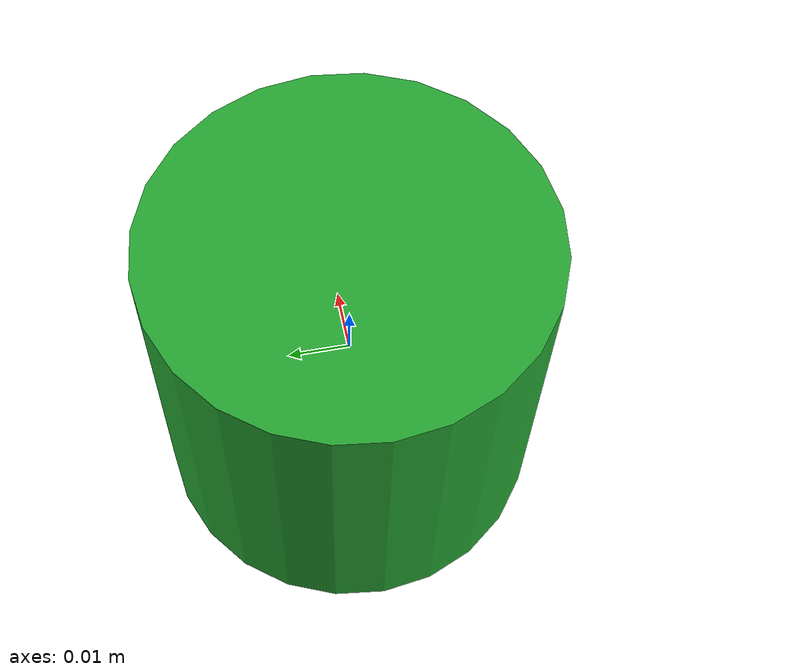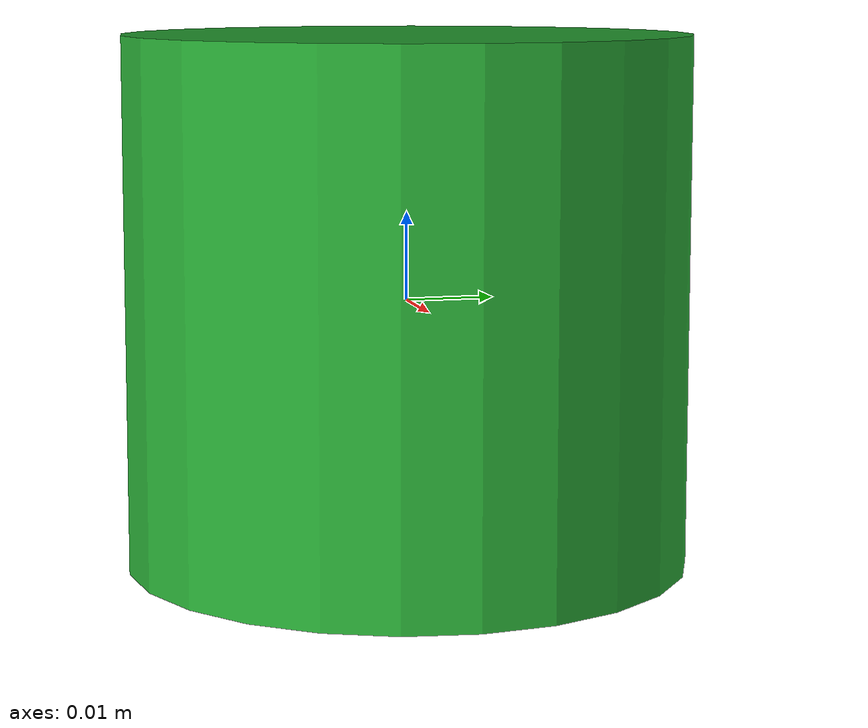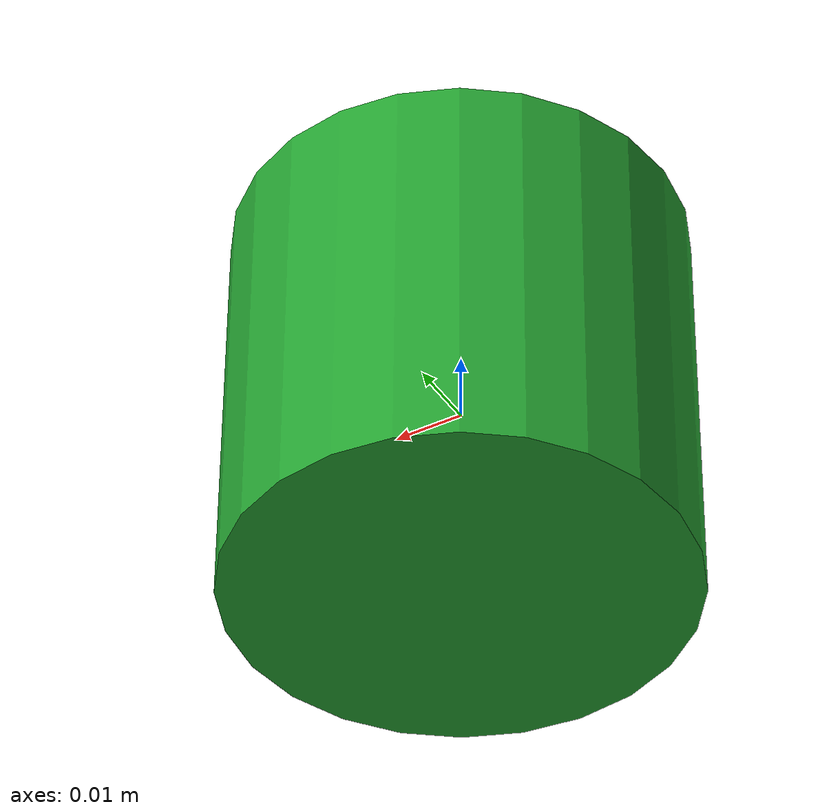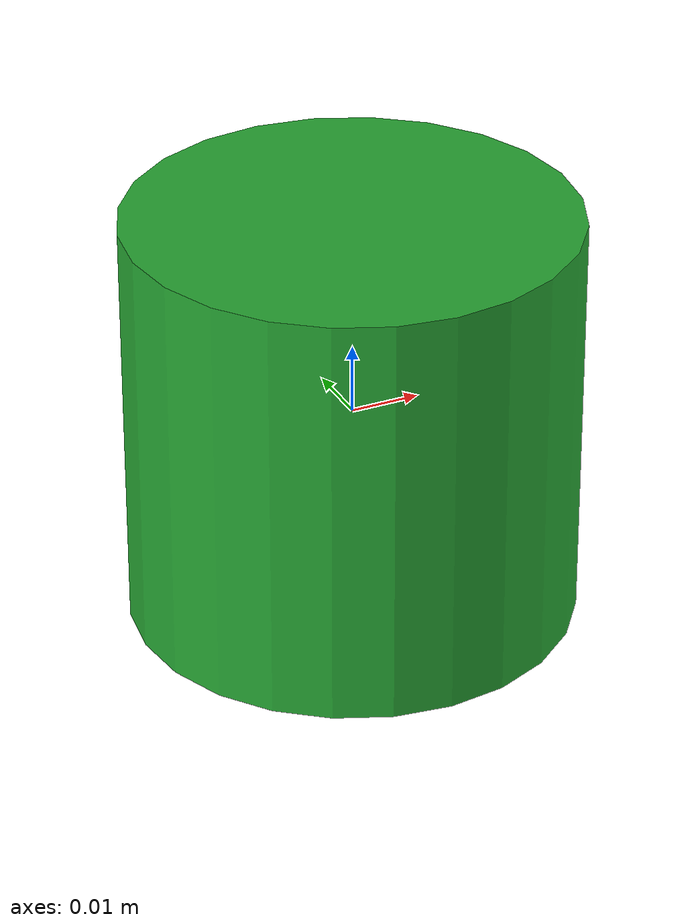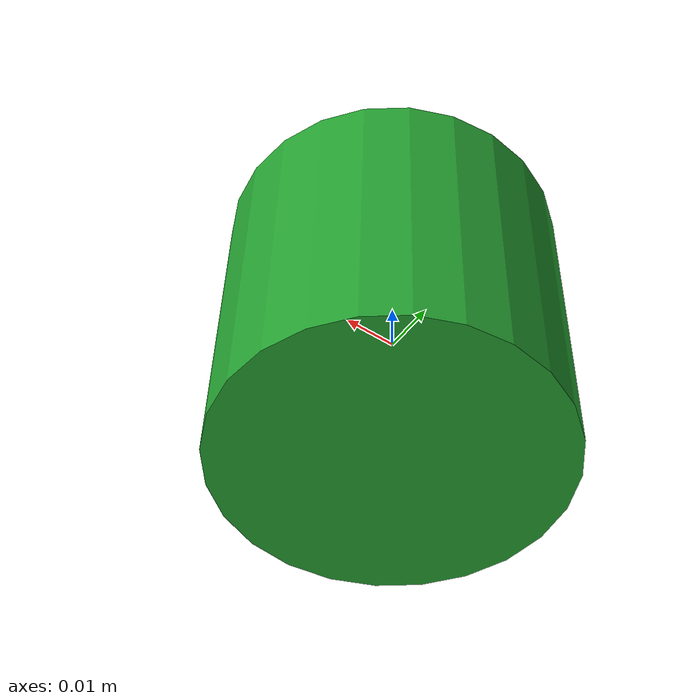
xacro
<?xml version="1.0"?>
<robot xmlns:xacro="http://www.ros.org/wiki/xacro" name="my_cylinder">

	<!-- Include the Gazebo definitions  -->
	<xacro:include filename="gazebo.xacro"/>

	<link name="cylinder">
		<visual>
			<geometry>
				<cylinder length="0.06" radius="0.032"/>
			</geometry>
			<origin rpy="0 0 0" xyz="0 0 0"/>
		</visual>

		<collision>
			<geometry>
				<cylinder length="0.06" radius="0.032"/>
			</geometry>
		</collision>

		<xacro:inertial_cylinder mass="0.02" length="0.06" radius="0.032">
			<origin xyz="0 0 0" rpy="0 0 0"/>
		</xacro:inertial_cylinder>

	</link>

</robot>

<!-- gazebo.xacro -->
<robot xmlns:xacro="http://www.ros.org/wiki/xacro" >

    <xacro:include filename="inertial.xacro"/>

	<gazebo>
		<plugin name="ground_truth_plugin" filename="libgazebo_ros_p3d.so">
			<update_rate>50.0</update_rate>
			<body_name>cylinder</body_name>
			<frame_name>world</frame_name>
		</plugin>
	</gazebo>

	<gazebo reference="cylinder">
		<mu1>0.1</mu1>
		<mu2>0.1</mu2>
		<material>Gazebo/Green</material>
	</gazebo>

</robot>

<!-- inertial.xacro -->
<robot xmlns:xacro="http://www.ros.org/wiki/xacro" >

	<xacro:macro name="inertial_cylinder" params="mass length radius *origin">
        <inertial>
            <xacro:insert_block name="origin"/>
            <mass value="${mass}" />
            <inertia ixx="${(1/12) * mass * (3*radius*radius + length*length)}" ixy="0.0" ixz="0.0"
                    iyy="${(1/12) * mass * (3*radius*radius + length*length)}" iyz="0.0"
                    izz="${(1/2) * mass * (radius*radius)}" />
        </inertial>
    </xacro:macro>

</robot>
